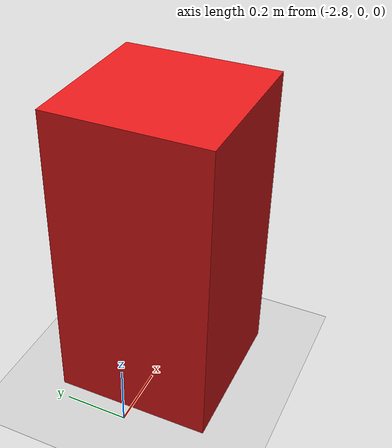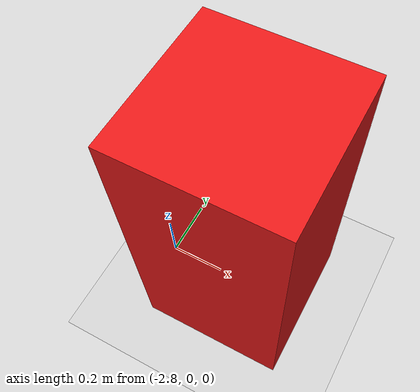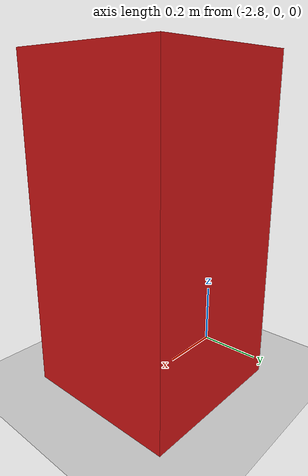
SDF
<sdf version="1.7">
 <world name="demo">
  <plugin filename="gz-sim-sensors-system" name="gz::sim::systems::Sensors">
   <render_engine>ogre2</render_engine>
  </plugin>
  <plugin filename="gz-sim-triggered-publisher-system" name="gz::sim::systems::TriggeredPublisher">
   <input type="gz.msgs.Int32" topic="/keyboard/keypress"><match field="data">16777237</match></input>
   <output type="gz.msgs.Twist" topic="/cmd_vel">linear: {x: -0.5}, angular: {z: 0.0}</output>
  </plugin>
  <plugin filename="gz-sim-triggered-publisher-system" name="gz::sim::systems::TriggeredPublisher">
   <input type="gz.msgs.Int32" topic="/keyboard/keypress"><match field="data">16777236</match></input>
   <output type="gz.msgs.Twist" topic="/cmd_vel">linear: {x: 0.0}, angular: {z: 1.0}</output>
  </plugin>
  <plugin filename="gz-sim-triggered-publisher-system" name="gz::sim::systems::TriggeredPublisher">
   <input type="gz.msgs.Int32" topic="/keyboard/keypress"><match field="data">16777235</match></input>
   <output type="gz.msgs.Twist" topic="/cmd_vel">linear: {x: 0.5}, angular: {z: 0.0}</output>
  </plugin>
  <plugin filename="gz-sim-triggered-publisher-system" name="gz::sim::systems::TriggeredPublisher">
   <input type="gz.msgs.Int32" topic="/keyboard/keypress"><match field="data">16777234</match></input>
   <output type="gz.msgs.Twist" topic="/cmd_vel">linear: {x: 0.0}, angular: {z: -1.0}</output>
  </plugin>
  <plugin filename="gz-sim-physics-system" name="gz::sim::systems::Physics"/>
  <plugin filename="gz-sim-scene-broadcaster-system" name="gz::sim::systems::SceneBroadcaster"/>
  <plugin name="gz::sim::systems::UserCommands" filename="gz-sim-user-commands-system"/>
  <plugin filename="gz-sim-imu-system" name="gz::sim::systems::Imu"/>
  <model name="verification_box">
   <static>1</static>
   <pose>-2.5 0 0.5 0 0 0</pose>
   <link name="link">
    <visual name="visual">
     <geometry><box><size>0.5 0.5 1.0</size></box></geometry>
     <material><ambient>0.9 0.1 0.1 1</ambient><diffuse>0.9 0.1 0.1 1</diffuse></material>
    </visual>
    <collision name="collision"><geometry><box><size>0.5 0.5 1.0</size></box></geometry></collision>
   </link>
  </model>
  <light name="sun" type="directional">
   <pose>0 0 10 0 -0 0</pose>
   <diffuse>0.8 0.8 0.8 1</diffuse>
   <specular>0.2 0.2 0.2 1</specular>
   <attenuation>
    <range>1000</range>
    <constant>0.9</constant>
    <linear>0.01</linear>
    <quadratic>0.001</quadratic>
   </attenuation>
   <direction>-0.5 0.1 -0.9</direction>
   <spot><inner_angle>0</inner_angle><outer_angle>0</outer_angle><falloff>0</falloff></spot>
  </light>
  <model name="ground_plane">
   <static>1</static>
   <link name="link">
    <collision name="collision">
     <geometry><plane><normal>0 0 1</normal><size>100 100</size></plane></geometry>
     <surface>
      <contact><collide_bitmask>65535</collide_bitmask></contact>
      <friction><ode><mu>1.0</mu><mu2>1.0</mu2></ode></friction>
     </surface>
    </collision>
    <visual name="visual">
     <cast_shadows>0</cast_shadows>
     <geometry><plane><normal>0 0 1</normal><size>100 100</size></plane></geometry>
     <material>
      <script><uri>file://media/materials/scripts/gazebo.material</uri><name>Gazebo/Grey</name></script>
     </material>
    </visual>
   </link>
  </model>
  <gravity>0 0 -9.8</gravity>
  <magnetic_field>6e-06 2.3e-05 -4.2e-05</magnetic_field>
  <atmosphere type="adiabatic"/>
  <physics type="ode">
   <max_step_size>0.001</max_step_size>
   <real_time_factor>1</real_time_factor>
   <real_time_update_rate>1000</real_time_update_rate>
  </physics>
  <scene><ambient>0.4 0.4 0.4 1</ambient><background>0.7 0.7 0.7 1</background><shadows>1</shadows></scene>
  <audio><device>default</device></audio>
  <spherical_coordinates>
   <surface_model>EARTH_WGS84</surface_model>
   <latitude_deg>0</latitude_deg>
   <longitude_deg>0</longitude_deg>
   <elevation>0</elevation>
   <heading_deg>0</heading_deg>
  </spherical_coordinates>
 </world>
</sdf>
